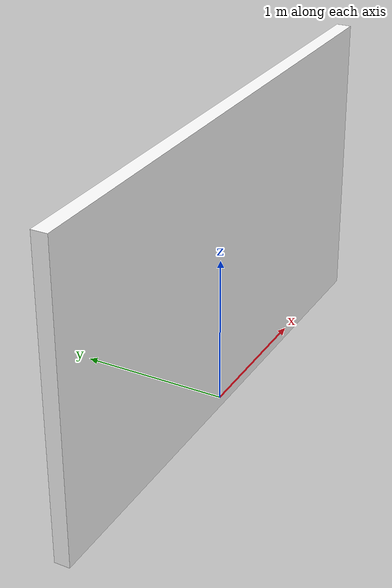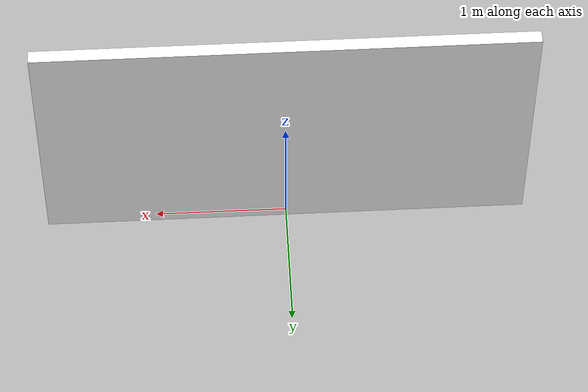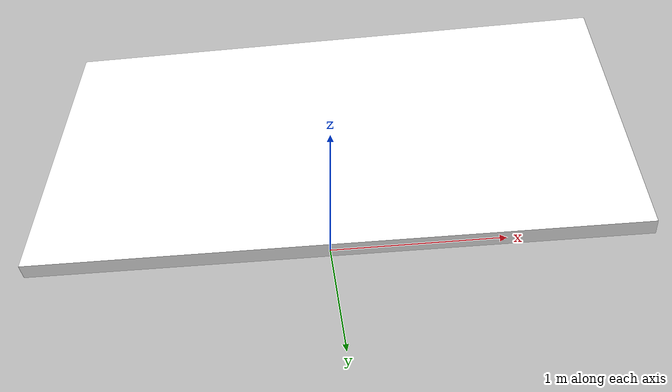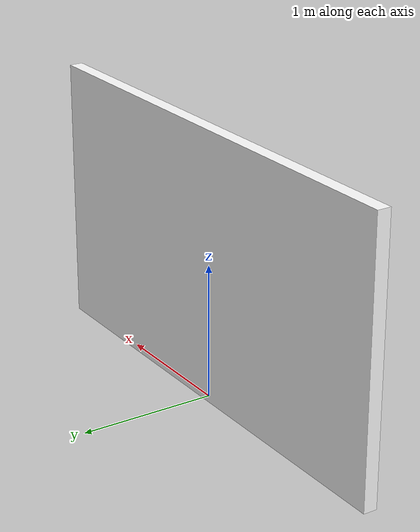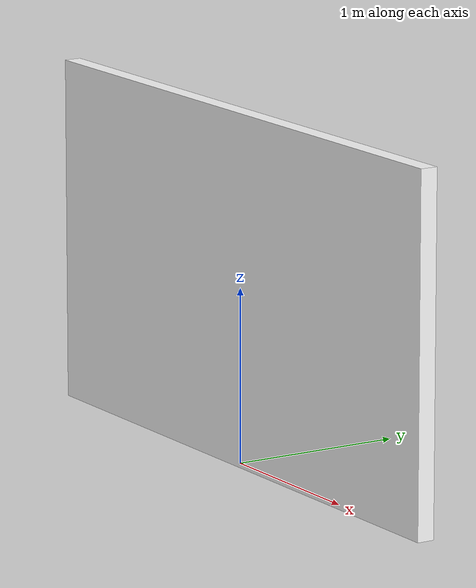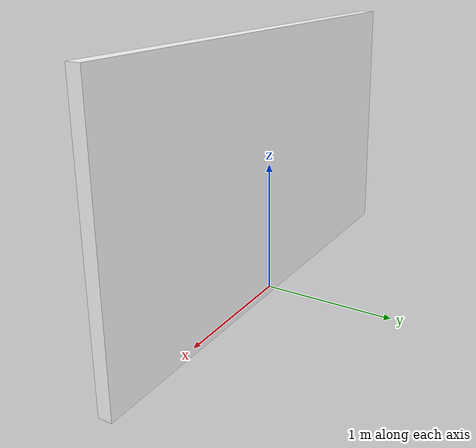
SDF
<?xml version='1.0'?>
<sdf version='1.7'>
  <model name='Curtain'>
    <link name="link">
      <collision name='Curtain_Collision'>
        <geometry>
          <box>
            <size>3.658 0.1 2</size>
          </box>
        </geometry>
        <pose>0 0 1 0 -0 0</pose>
      </collision>
      <visual name='Curtain_Visual'>
        <pose>0 0 1 0 -0 0</pose>
        <geometry>
          <box>
            <size>3.658 0.1 2</size>
          </box>
        </geometry>
        <material>
          <script>
            <uri>file://media/materials/scripts/gazebo.material</uri>
            <name>Gazebo/CoM</name>
          </script>
          <ambient>1 1 1 1</ambient>
        </material>
        <meta>
          <layer>0</layer>
        </meta>
      </visual>
    </link>
    <static>1</static>
  </model>
</sdf>
